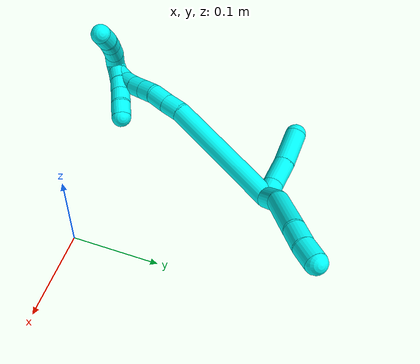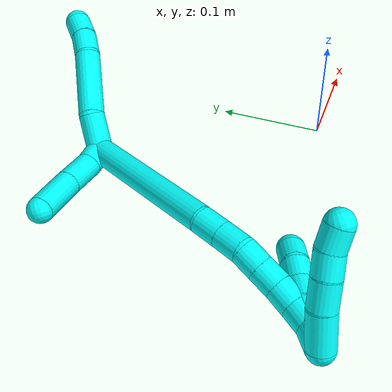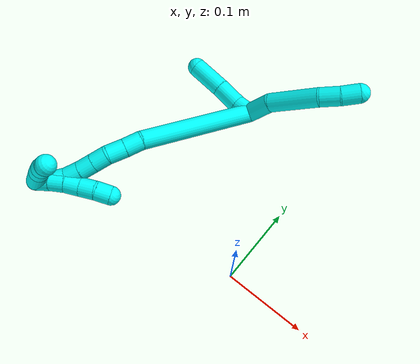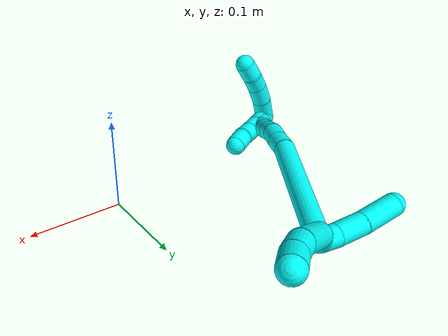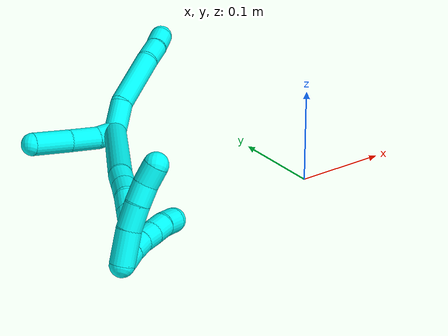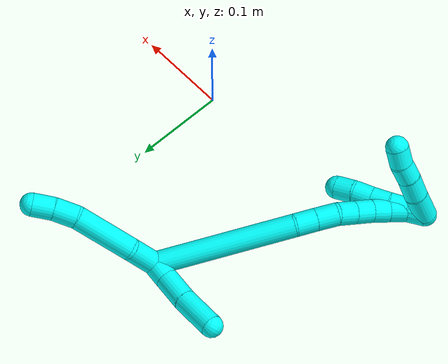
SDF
<sdf version="1.7">
 <world name="default">
  <model name="3">
   <static>0</static>
   <link name="3">
    <collision name="collision-cylinder-e_1_2_8">
     <pose>-0.000932 -0.00084 -0.017395 3.09332 -0.053478 -1.67303</pose>
     <geometry><cylinder><radius>0.0125</radius><length>0.03488</length></cylinder></geometry>
     <surface>
      <friction><ode><mu>1.16</mu><mu2>1.16</mu2><slip1>0</slip1><slip2>0</slip2></ode></friction>
      <contact><ode><kp>1e+06</kp><kd>1</kd><max_vel>0</max_vel><min_depth>0.001</min_depth></ode></contact>
     </surface>
    </collision>
    <visual name="visual-cylinder-e_1_2_8">
     <pose>-0.000932 -0.00084 -0.017395 3.09332 -0.053478 -1.67303</pose>
     <geometry><cylinder><radius>0.0125</radius><length>0.03488</length></cylinder></geometry>
     <material><ambient>0.003922 1 0.996078 1</ambient></material>
    </visual>
    <collision name="collision-cylinder-e_2_8_9">
     <pose>-0.009174 0.006251 -0.066096 -2.89346 -0.222573 1.46129</pose>
     <geometry><cylinder><radius>0.0125</radius><length>0.066225</length></cylinder></geometry>
     <surface>
      <friction><ode><mu>1.16</mu><mu2>1.16</mu2><slip1>0</slip1><slip2>0</slip2></ode></friction>
      <contact><ode><kp>1e+06</kp><kd>1</kd><max_vel>0</max_vel><min_depth>0.001</min_depth></ode></contact>
     </surface>
    </collision>
    <visual name="visual-cylinder-e_2_8_9">
     <pose>-0.009174 0.006251 -0.066096 -2.89346 -0.222573 1.46129</pose>
     <geometry><cylinder><radius>0.0125</radius><length>0.066225</length></cylinder></geometry>
     <material><ambient>0.003922 1 0.996078 1</ambient></material>
    </visual>
    <collision name="collision-cylinder-e_3_9_10">
     <pose>-0.018084 0.019896 -0.108615 -2.6703 -0.126584 0.516132</pose>
     <geometry><cylinder><radius>0.0125</radius><length>0.025371</length></cylinder></geometry>
     <surface>
      <friction><ode><mu>1.16</mu><mu2>1.16</mu2><slip1>0</slip1><slip2>0</slip2></ode></friction>
      <contact><ode><kp>1e+06</kp><kd>1</kd><max_vel>0</max_vel><min_depth>0.001</min_depth></ode></contact>
     </surface>
    </collision>
    <visual name="visual-cylinder-e_3_9_10">
     <pose>-0.018084 0.019896 -0.108615 -2.6703 -0.126584 0.516132</pose>
     <geometry><cylinder><radius>0.0125</radius><length>0.025371</length></cylinder></geometry>
     <material><ambient>0.003922 1 0.996078 1</ambient></material>
    </visual>
    <collision name="collision-cylinder-e_4_10_6">
     <pose>-0.019464 0.031529 -0.129989 -2.61415 0.018858 -0.069815</pose>
     <geometry><cylinder><radius>0.0125</radius><length>0.023524</length></cylinder></geometry>
     <surface>
      <friction><ode><mu>1.16</mu><mu2>1.16</mu2><slip1>0</slip1><slip2>0</slip2></ode></friction>
      <contact><ode><kp>1e+06</kp><kd>1</kd><max_vel>0</max_vel><min_depth>0.001</min_depth></ode></contact>
     </surface>
    </collision>
    <visual name="visual-cylinder-e_4_10_6">
     <pose>-0.019464 0.031529 -0.129989 -2.61415 0.018858 -0.069815</pose>
     <geometry><cylinder><radius>0.0125</radius><length>0.023524</length></cylinder></geometry>
     <material><ambient>0.003922 1 0.996078 1</ambient></material>
    </visual>
    <collision name="collision-cylinder-e_1_2_11">
     <pose>0.007551 -0.004794 0.006071 0.668456 0.773325 0.280914</pose>
     <geometry><cylinder><radius>0.0125</radius><length>0.02162</length></cylinder></geometry>
     <surface>
      <friction><ode><mu>1.16</mu><mu2>1.16</mu2><slip1>0</slip1><slip2>0</slip2></ode></friction>
      <contact><ode><kp>1e+06</kp><kd>1</kd><max_vel>0</max_vel><min_depth>0.001</min_depth></ode></contact>
     </surface>
    </collision>
    <visual name="visual-cylinder-e_1_2_11">
     <pose>0.007551 -0.004794 0.006071 0.668456 0.773325 0.280914</pose>
     <geometry><cylinder><radius>0.0125</radius><length>0.02162</length></cylinder></geometry>
     <material><ambient>0.003922 1 0.996078 1</ambient></material>
    </visual>
    <collision name="collision-cylinder-e_2_11_12">
     <pose>0.0273 -0.019208 0.018866 0.960745 0.804675 0.436434</pose>
     <geometry><cylinder><radius>0.0125</radius><length>0.033855</length></cylinder></geometry>
     <surface>
      <friction><ode><mu>1.16</mu><mu2>1.16</mu2><slip1>0</slip1><slip2>0</slip2></ode></friction>
      <contact><ode><kp>1e+06</kp><kd>1</kd><max_vel>0</max_vel><min_depth>0.001</min_depth></ode></contact>
     </surface>
    </collision>
    <visual name="visual-cylinder-e_2_11_12">
     <pose>0.0273 -0.019208 0.018866 0.960745 0.804675 0.436434</pose>
     <geometry><cylinder><radius>0.0125</radius><length>0.033855</length></cylinder></geometry>
     <material><ambient>0.003922 1 0.996078 1</ambient></material>
    </visual>
    <collision name="collision-cylinder-e_3_12_5">
     <pose>0.054118 -0.042962 0.034651 1.00068 0.716426 0.403786</pose>
     <geometry><cylinder><radius>0.0125</radius><length>0.044525</length></cylinder></geometry>
     <surface>
      <friction><ode><mu>1.16</mu><mu2>1.16</mu2><slip1>0</slip1><slip2>0</slip2></ode></friction>
      <contact><ode><kp>1e+06</kp><kd>1</kd><max_vel>0</max_vel><min_depth>0.001</min_depth></ode></contact>
     </surface>
    </collision>
    <visual name="visual-cylinder-e_3_12_5">
     <pose>0.054118 -0.042962 0.034651 1.00068 0.716426 0.403786</pose>
     <geometry><cylinder><radius>0.0125</radius><length>0.044525</length></cylinder></geometry>
     <material><ambient>0.003922 1 0.996078 1</ambient></material>
    </visual>
    <collision name="collision-cylinder-e_1_2_13">
     <pose>-0.028146 -0.053161 0.047213 0.844579 -0.376933 -0.170981</pose>
     <geometry><cylinder><radius>0.0125</radius><length>0.152936</length></cylinder></geometry>
     <surface>
      <friction><ode><mu>1.16</mu><mu2>1.16</mu2><slip1>0</slip1><slip2>0</slip2></ode></friction>
      <contact><ode><kp>1e+06</kp><kd>1</kd><max_vel>0</max_vel><min_depth>0.001</min_depth></ode></contact>
     </surface>
    </collision>
    <visual name="visual-cylinder-e_1_2_13">
     <pose>-0.028146 -0.053161 0.047213 0.844579 -0.376933 -0.170981</pose>
     <geometry><cylinder><radius>0.0125</radius><length>0.152936</length></cylinder></geometry>
     <material><ambient>0.003922 1 0.996078 1</ambient></material>
    </visual>
    <collision name="collision-cylinder-e_2_13_14">
     <pose>-0.06154 -0.112538 0.102758 0.641072 -0.467575 -0.157791</pose>
     <geometry><cylinder><radius>0.0125</radius><length>0.02329</length></cylinder></geometry>
     <surface>
      <friction><ode><mu>1.16</mu><mu2>1.16</mu2><slip1>0</slip1><slip2>0</slip2></ode></friction>
      <contact><ode><kp>1e+06</kp><kd>1</kd><max_vel>0</max_vel><min_depth>0.001</min_depth></ode></contact>
     </surface>
    </collision>
    <visual name="visual-cylinder-e_2_13_14">
     <pose>-0.06154 -0.112538 0.102758 0.641072 -0.467575 -0.157791</pose>
     <geometry><cylinder><radius>0.0125</radius><length>0.02329</length></cylinder></geometry>
     <material><ambient>0.003922 1 0.996078 1</ambient></material>
    </visual>
    <collision name="collision-cylinder-e_3_14_15">
     <pose>-0.071781 -0.125468 0.119413 0.67873 -0.436821 -0.156388</pose>
     <geometry><cylinder><radius>0.0125</radius><length>0.023604</length></cylinder></geometry>
     <surface>
      <friction><ode><mu>1.16</mu><mu2>1.16</mu2><slip1>0</slip1><slip2>0</slip2></ode></friction>
      <contact><ode><kp>1e+06</kp><kd>1</kd><max_vel>0</max_vel><min_depth>0.001</min_depth></ode></contact>
     </surface>
    </collision>
    <visual name="visual-cylinder-e_3_14_15">
     <pose>-0.071781 -0.125468 0.119413 0.67873 -0.436821 -0.156388</pose>
     <geometry><cylinder><radius>0.0125</radius><length>0.023604</length></cylinder></geometry>
     <material><ambient>0.003922 1 0.996078 1</ambient></material>
    </visual>
    <collision name="collision-cylinder-e_4_15_16">
     <pose>-0.080557 -0.135548 0.136433 0.369273 -0.385332 -0.072838</pose>
     <geometry><cylinder><radius>0.0125</radius><length>0.020127</length></cylinder></geometry>
     <surface>
      <friction><ode><mu>1.16</mu><mu2>1.16</mu2><slip1>0</slip1><slip2>0</slip2></ode></friction>
      <contact><ode><kp>1e+06</kp><kd>1</kd><max_vel>0</max_vel><min_depth>0.001</min_depth></ode></contact>
     </surface>
    </collision>
    <visual name="visual-cylinder-e_4_15_16">
     <pose>-0.080557 -0.135548 0.136433 0.369273 -0.385332 -0.072838</pose>
     <geometry><cylinder><radius>0.0125</radius><length>0.020127</length></cylinder></geometry>
     <material><ambient>0.003922 1 0.996078 1</ambient></material>
    </visual>
    <collision name="collision-cylinder-e_5_16_17">
     <pose>-0.088124 -0.142225 0.153783 0.365498 -0.387784 -0.072547</pose>
     <geometry><cylinder><radius>0.0125</radius><length>0.020016</length></cylinder></geometry>
     <surface>
      <friction><ode><mu>1.16</mu><mu2>1.16</mu2><slip1>0</slip1><slip2>0</slip2></ode></friction>
      <contact><ode><kp>1e+06</kp><kd>1</kd><max_vel>0</max_vel><min_depth>0.001</min_depth></ode></contact>
     </surface>
    </collision>
    <visual name="visual-cylinder-e_5_16_17">
     <pose>-0.088124 -0.142225 0.153783 0.365498 -0.387784 -0.072547</pose>
     <geometry><cylinder><radius>0.0125</radius><length>0.020016</length></cylinder></geometry>
     <material><ambient>0.003922 1 0.996078 1</ambient></material>
    </visual>
    <collision name="collision-cylinder-e_6_17_18">
     <pose>-0.094939 -0.149354 0.171174 0.41187 -0.307788 -0.064786</pose>
     <geometry><cylinder><radius>0.0125</radius><length>0.020012</length></cylinder></geometry>
     <surface>
      <friction><ode><mu>1.16</mu><mu2>1.16</mu2><slip1>0</slip1><slip2>0</slip2></ode></friction>
      <contact><ode><kp>1e+06</kp><kd>1</kd><max_vel>0</max_vel><min_depth>0.001</min_depth></ode></contact>
     </surface>
    </collision>
    <visual name="visual-cylinder-e_6_17_18">
     <pose>-0.094939 -0.149354 0.171174 0.41187 -0.307788 -0.064786</pose>
     <geometry><cylinder><radius>0.0125</radius><length>0.020012</length></cylinder></geometry>
     <material><ambient>0.003922 1 0.996078 1</ambient></material>
    </visual>
    <collision name="collision-cylinder-e_7_18_19">
     <pose>-0.100084 -0.158779 0.18792 0.610938 -0.212876 -0.067357</pose>
     <geometry><cylinder><radius>0.0125</radius><length>0.020002</length></cylinder></geometry>
     <surface>
      <friction><ode><mu>1.16</mu><mu2>1.16</mu2><slip1>0</slip1><slip2>0</slip2></ode></friction>
      <contact><ode><kp>1e+06</kp><kd>1</kd><max_vel>0</max_vel><min_depth>0.001</min_depth></ode></contact>
     </surface>
    </collision>
    <visual name="visual-cylinder-e_7_18_19">
     <pose>-0.100084 -0.158779 0.18792 0.610938 -0.212876 -0.067357</pose>
     <geometry><cylinder><radius>0.0125</radius><length>0.020002</length></cylinder></geometry>
     <material><ambient>0.003922 1 0.996078 1</ambient></material>
    </visual>
    <collision name="collision-cylinder-e_8_19_1">
     <pose>-0.101508 -0.170155 0.204074 0.616136 0.068873 0.021923</pose>
     <geometry><cylinder><radius>0.0125</radius><length>0.020013</length></cylinder></geometry>
     <surface>
      <friction><ode><mu>1.16</mu><mu2>1.16</mu2><slip1>0</slip1><slip2>0</slip2></ode></friction>
      <contact><ode><kp>1e+06</kp><kd>1</kd><max_vel>0</max_vel><min_depth>0.001</min_depth></ode></contact>
     </surface>
    </collision>
    <visual name="visual-cylinder-e_8_19_1">
     <pose>-0.101508 -0.170155 0.204074 0.616136 0.068873 0.021923</pose>
     <geometry><cylinder><radius>0.0125</radius><length>0.020013</length></cylinder></geometry>
     <material><ambient>0.003922 1 0.996078 1</ambient></material>
    </visual>
    <collision name="collision-cylinder-e_1_1_20">
     <pose>-0.102011 -0.170585 0.203851 -2.57383 -0.119411 0.404169</pose>
     <geometry><cylinder><radius>0.0125</radius><length>0.02</length></cylinder></geometry>
     <surface>
      <friction><ode><mu>1.16</mu><mu2>1.16</mu2><slip1>0</slip1><slip2>0</slip2></ode></friction>
      <contact><ode><kp>1e+06</kp><kd>1</kd><max_vel>0</max_vel><min_depth>0.001</min_depth></ode></contact>
     </surface>
    </collision>
    <visual name="visual-cylinder-e_1_1_20">
     <pose>-0.102011 -0.170585 0.203851 -2.57383 -0.119411 0.404169</pose>
     <geometry><cylinder><radius>0.0125</radius><length>0.02</length></cylinder></geometry>
     <material><ambient>0.003922 1 0.996078 1</ambient></material>
    </visual>
    <collision name="collision-cylinder-e_2_20_21">
     <pose>-0.104775 -0.159001 0.187829 -2.457 -0.157912 0.437001</pose>
     <geometry><cylinder><radius>0.0125</radius><length>0.02</length></cylinder></geometry>
     <surface>
      <friction><ode><mu>1.16</mu><mu2>1.16</mu2><slip1>0</slip1><slip2>0</slip2></ode></friction>
      <contact><ode><kp>1e+06</kp><kd>1</kd><max_vel>0</max_vel><min_depth>0.001</min_depth></ode></contact>
     </surface>
    </collision>
    <visual name="visual-cylinder-e_2_20_21">
     <pose>-0.104775 -0.159001 0.187829 -2.457 -0.157912 0.437001</pose>
     <geometry><cylinder><radius>0.0125</radius><length>0.02</length></cylinder></geometry>
     <material><ambient>0.003922 1 0.996078 1</ambient></material>
    </visual>
    <collision name="collision-cylinder-e_3_21_22">
     <pose>-0.108719 -0.145818 0.173379 -2.34609 -0.239455 0.557747</pose>
     <geometry><cylinder><radius>0.0125</radius><length>0.02</length></cylinder></geometry>
     <surface>
      <friction><ode><mu>1.16</mu><mu2>1.16</mu2><slip1>0</slip1><slip2>0</slip2></ode></friction>
      <contact><ode><kp>1e+06</kp><kd>1</kd><max_vel>0</max_vel><min_depth>0.001</min_depth></ode></contact>
     </surface>
    </collision>
    <visual name="visual-cylinder-e_3_21_22">
     <pose>-0.108719 -0.145818 0.173379 -2.34609 -0.239455 0.557747</pose>
     <geometry><cylinder><radius>0.0125</radius><length>0.02</length></cylinder></geometry>
     <material><ambient>0.003922 1 0.996078 1</ambient></material>
    </visual>
    <collision name="collision-cylinder-e_4_22_23">
     <pose>-0.113692 -0.132427 0.159396 -2.40979 -0.263142 0.665113</pose>
     <geometry><cylinder><radius>0.0125</radius><length>0.02</length></cylinder></geometry>
     <surface>
      <friction><ode><mu>1.16</mu><mu2>1.16</mu2><slip1>0</slip1><slip2>0</slip2></ode></friction>
      <contact><ode><kp>1e+06</kp><kd>1</kd><max_vel>0</max_vel><min_depth>0.001</min_depth></ode></contact>
     </surface>
    </collision>
    <visual name="visual-cylinder-e_4_22_23">
     <pose>-0.113692 -0.132427 0.159396 -2.40979 -0.263142 0.665113</pose>
     <geometry><cylinder><radius>0.0125</radius><length>0.02</length></cylinder></geometry>
     <material><ambient>0.003922 1 0.996078 1</ambient></material>
    </visual>
    <collision name="collision-cylinder-e_5_23_4">
     <pose>-0.118719 -0.118139 0.146493 -2.20127 -0.245099 0.475579</pose>
     <geometry><cylinder><radius>0.0125</radius><length>0.02</length></cylinder></geometry>
     <surface>
      <friction><ode><mu>1.16</mu><mu2>1.16</mu2><slip1>0</slip1><slip2>0</slip2></ode></friction>
      <contact><ode><kp>1e+06</kp><kd>1</kd><max_vel>0</max_vel><min_depth>0.001</min_depth></ode></contact>
     </surface>
    </collision>
    <visual name="visual-cylinder-e_5_23_4">
     <pose>-0.118719 -0.118139 0.146493 -2.20127 -0.245099 0.475579</pose>
     <geometry><cylinder><radius>0.0125</radius><length>0.02</length></cylinder></geometry>
     <material><ambient>0.003922 1 0.996078 1</ambient></material>
    </visual>
    <collision name="collision-cylinder-e_1_1_24">
     <pose>-0.103792 -0.183479 0.197208 2.67543 -0.175043 -0.708087</pose>
     <geometry><cylinder><radius>0.0125</radius><length>0.034136</length></cylinder></geometry>
     <surface>
      <friction><ode><mu>1.16</mu><mu2>1.16</mu2><slip1>0</slip1><slip2>0</slip2></ode></friction>
      <contact><ode><kp>1e+06</kp><kd>1</kd><max_vel>0</max_vel><min_depth>0.001</min_depth></ode></contact>
     </surface>
    </collision>
    <visual name="visual-cylinder-e_1_1_24">
     <pose>-0.103792 -0.183479 0.197208 2.67543 -0.175043 -0.708087</pose>
     <geometry><cylinder><radius>0.0125</radius><length>0.034136</length></cylinder></geometry>
     <material><ambient>0.003922 1 0.996078 1</ambient></material>
    </visual>
    <collision name="collision-cylinder-e_2_24_25">
     <pose>-0.110527 -0.196156 0.171375 2.69935 -0.30459 -1.19814</pose>
     <geometry><cylinder><radius>0.0125</radius><length>0.025096</length></cylinder></geometry>
     <surface>
      <friction><ode><mu>1.16</mu><mu2>1.16</mu2><slip1>0</slip1><slip2>0</slip2></ode></friction>
      <contact><ode><kp>1e+06</kp><kd>1</kd><max_vel>0</max_vel><min_depth>0.001</min_depth></ode></contact>
     </surface>
    </collision>
    <visual name="visual-cylinder-e_2_24_25">
     <pose>-0.110527 -0.196156 0.171375 2.69935 -0.30459 -1.19814</pose>
     <geometry><cylinder><radius>0.0125</radius><length>0.025096</length></cylinder></geometry>
     <material><ambient>0.003922 1 0.996078 1</ambient></material>
    </visual>
    <collision name="collision-cylinder-e_3_25_26">
     <pose>-0.117664 -0.204396 0.151483 2.81068 -0.338142 -1.59282</pose>
     <geometry><cylinder><radius>0.0125</radius><length>0.020339</length></cylinder></geometry>
     <surface>
      <friction><ode><mu>1.16</mu><mu2>1.16</mu2><slip1>0</slip1><slip2>0</slip2></ode></friction>
      <contact><ode><kp>1e+06</kp><kd>1</kd><max_vel>0</max_vel><min_depth>0.001</min_depth></ode></contact>
     </surface>
    </collision>
    <visual name="visual-cylinder-e_3_25_26">
     <pose>-0.117664 -0.204396 0.151483 2.81068 -0.338142 -1.59282</pose>
     <geometry><cylinder><radius>0.0125</radius><length>0.020339</length></cylinder></geometry>
     <material><ambient>0.003922 1 0.996078 1</ambient></material>
    </visual>
    <collision name="collision-cylinder-e_4_26_3">
     <pose>-0.125881 -0.21173 0.134467 2.65351 -0.494034 -1.58341</pose>
     <geometry><cylinder><radius>0.0125</radius><length>0.020429</length></cylinder></geometry>
     <surface>
      <friction><ode><mu>1.16</mu><mu2>1.16</mu2><slip1>0</slip1><slip2>0</slip2></ode></friction>
      <contact><ode><kp>1e+06</kp><kd>1</kd><max_vel>0</max_vel><min_depth>0.001</min_depth></ode></contact>
     </surface>
    </collision>
    <visual name="visual-cylinder-e_4_26_3">
     <pose>-0.125881 -0.21173 0.134467 2.65351 -0.494034 -1.58341</pose>
     <geometry><cylinder><radius>0.0125</radius><length>0.020429</length></cylinder></geometry>
     <material><ambient>0.003922 1 0.996078 1</ambient></material>
    </visual>
    <collision name="collision-sphere-3">
     <pose>-0.130725 -0.215947 0.126524 0 -0 0</pose>
     <geometry><sphere><radius>0.0125</radius></sphere></geometry>
     <surface>
      <friction><ode><mu>1.16</mu><mu2>1.16</mu2><slip1>0</slip1><slip2>0</slip2></ode></friction>
      <contact><ode><kp>1e+06</kp><kd>1</kd><max_vel>0</max_vel><min_depth>0.001</min_depth></ode></contact>
     </surface>
    </collision>
    <visual name="visual-sphere-3">
     <pose>-0.130725 -0.215947 0.126524 0 -0 0</pose>
     <geometry><sphere><radius>0.0125</radius></sphere></geometry>
     <material><ambient>0.003922 1 0.996078 1</ambient></material>
    </visual>
    <collision name="collision-sphere-26">
     <pose>-0.121038 -0.207513 0.14241 0 -0 0</pose>
     <geometry><sphere><radius>0.0125</radius></sphere></geometry>
     <surface>
      <friction><ode><mu>1.16</mu><mu2>1.16</mu2><slip1>0</slip1><slip2>0</slip2></ode></friction>
      <contact><ode><kp>1e+06</kp><kd>1</kd><max_vel>0</max_vel><min_depth>0.001</min_depth></ode></contact>
     </surface>
    </collision>
    <visual name="visual-sphere-26">
     <pose>-0.121038 -0.207513 0.14241 0 -0 0</pose>
     <geometry><sphere><radius>0.0125</radius></sphere></geometry>
     <material><ambient>0.003922 1 0.996078 1</ambient></material>
    </visual>
    <collision name="collision-sphere-25">
     <pose>-0.114291 -0.201279 0.160556 0 -0 0</pose>
     <geometry><sphere><radius>0.0125</radius></sphere></geometry>
     <surface>
      <friction><ode><mu>1.16</mu><mu2>1.16</mu2><slip1>0</slip1><slip2>0</slip2></ode></friction>
      <contact><ode><kp>1e+06</kp><kd>1</kd><max_vel>0</max_vel><min_depth>0.001</min_depth></ode></contact>
     </surface>
    </collision>
    <visual name="visual-sphere-25">
     <pose>-0.114291 -0.201279 0.160556 0 -0 0</pose>
     <geometry><sphere><radius>0.0125</radius></sphere></geometry>
     <material><ambient>0.003922 1 0.996078 1</ambient></material>
    </visual>
    <collision name="collision-sphere-24">
     <pose>-0.106764 -0.191033 0.182194 0 -0 0</pose>
     <geometry><sphere><radius>0.0125</radius></sphere></geometry>
     <surface>
      <friction><ode><mu>1.16</mu><mu2>1.16</mu2><slip1>0</slip1><slip2>0</slip2></ode></friction>
      <contact><ode><kp>1e+06</kp><kd>1</kd><max_vel>0</max_vel><min_depth>0.001</min_depth></ode></contact>
     </surface>
    </collision>
    <visual name="visual-sphere-24">
     <pose>-0.106764 -0.191033 0.182194 0 -0 0</pose>
     <geometry><sphere><radius>0.0125</radius></sphere></geometry>
     <material><ambient>0.003922 1 0.996078 1</ambient></material>
    </visual>
    <collision name="collision-sphere-4">
     <pose>-0.121146 -0.110303 0.140774 0 -0 0</pose>
     <geometry><sphere><radius>0.0125</radius></sphere></geometry>
     <surface>
      <friction><ode><mu>1.16</mu><mu2>1.16</mu2><slip1>0</slip1><slip2>0</slip2></ode></friction>
      <contact><ode><kp>1e+06</kp><kd>1</kd><max_vel>0</max_vel><min_depth>0.001</min_depth></ode></contact>
     </surface>
    </collision>
    <visual name="visual-sphere-4">
     <pose>-0.121146 -0.110303 0.140774 0 -0 0</pose>
     <geometry><sphere><radius>0.0125</radius></sphere></geometry>
     <material><ambient>0.003922 1 0.996078 1</ambient></material>
    </visual>
    <collision name="collision-sphere-23">
     <pose>-0.116293 -0.125975 0.152213 0 -0 0</pose>
     <geometry><sphere><radius>0.0125</radius></sphere></geometry>
     <surface>
      <friction><ode><mu>1.16</mu><mu2>1.16</mu2><slip1>0</slip1><slip2>0</slip2></ode></friction>
      <contact><ode><kp>1e+06</kp><kd>1</kd><max_vel>0</max_vel><min_depth>0.001</min_depth></ode></contact>
     </surface>
    </collision>
    <visual name="visual-sphere-23">
     <pose>-0.116293 -0.125975 0.152213 0 -0 0</pose>
     <geometry><sphere><radius>0.0125</radius></sphere></geometry>
     <material><ambient>0.003922 1 0.996078 1</ambient></material>
    </visual>
    <collision name="collision-sphere-22">
     <pose>-0.111091 -0.138879 0.16658 0 -0 0</pose>
     <geometry><sphere><radius>0.0125</radius></sphere></geometry>
     <surface>
      <friction><ode><mu>1.16</mu><mu2>1.16</mu2><slip1>0</slip1><slip2>0</slip2></ode></friction>
      <contact><ode><kp>1e+06</kp><kd>1</kd><max_vel>0</max_vel><min_depth>0.001</min_depth></ode></contact>
     </surface>
    </collision>
    <visual name="visual-sphere-22">
     <pose>-0.111091 -0.138879 0.16658 0 -0 0</pose>
     <geometry><sphere><radius>0.0125</radius></sphere></geometry>
     <material><ambient>0.003922 1 0.996078 1</ambient></material>
    </visual>
    <collision name="collision-sphere-21">
     <pose>-0.106347 -0.152756 0.180179 0 -0 0</pose>
     <geometry><sphere><radius>0.0125</radius></sphere></geometry>
     <surface>
      <friction><ode><mu>1.16</mu><mu2>1.16</mu2><slip1>0</slip1><slip2>0</slip2></ode></friction>
      <contact><ode><kp>1e+06</kp><kd>1</kd><max_vel>0</max_vel><min_depth>0.001</min_depth></ode></contact>
     </surface>
    </collision>
    <visual name="visual-sphere-21">
     <pose>-0.106347 -0.152756 0.180179 0 -0 0</pose>
     <geometry><sphere><radius>0.0125</radius></sphere></geometry>
     <material><ambient>0.003922 1 0.996078 1</ambient></material>
    </visual>
    <collision name="collision-sphere-20">
     <pose>-0.103202 -0.165246 0.19548 0 -0 0</pose>
     <geometry><sphere><radius>0.0125</radius></sphere></geometry>
     <surface>
      <friction><ode><mu>1.16</mu><mu2>1.16</mu2><slip1>0</slip1><slip2>0</slip2></ode></friction>
      <contact><ode><kp>1e+06</kp><kd>1</kd><max_vel>0</max_vel><min_depth>0.001</min_depth></ode></contact>
     </surface>
    </collision>
    <visual name="visual-sphere-20">
     <pose>-0.103202 -0.165246 0.19548 0 -0 0</pose>
     <geometry><sphere><radius>0.0125</radius></sphere></geometry>
     <material><ambient>0.003922 1 0.996078 1</ambient></material>
    </visual>
    <collision name="collision-sphere-11">
     <pose>0.015102 -0.009589 0.012142 0 -0 0</pose>
     <geometry><sphere><radius>0.0125</radius></sphere></geometry>
     <surface>
      <friction><ode><mu>1.16</mu><mu2>1.16</mu2><slip1>0</slip1><slip2>0</slip2></ode></friction>
      <contact><ode><kp>1e+06</kp><kd>1</kd><max_vel>0</max_vel><min_depth>0.001</min_depth></ode></contact>
     </surface>
    </collision>
    <visual name="visual-sphere-11">
     <pose>0.015102 -0.009589 0.012142 0 -0 0</pose>
     <geometry><sphere><radius>0.0125</radius></sphere></geometry>
     <material><ambient>0.003922 1 0.996078 1</ambient></material>
    </visual>
    <collision name="collision-sphere-6">
     <pose>-0.019242 0.037448 -0.14015 0 -0 0</pose>
     <geometry><sphere><radius>0.0125</radius></sphere></geometry>
     <surface>
      <friction><ode><mu>1.16</mu><mu2>1.16</mu2><slip1>0</slip1><slip2>0</slip2></ode></friction>
      <contact><ode><kp>1e+06</kp><kd>1</kd><max_vel>0</max_vel><min_depth>0.001</min_depth></ode></contact>
     </surface>
    </collision>
    <visual name="visual-sphere-6">
     <pose>-0.019242 0.037448 -0.14015 0 -0 0</pose>
     <geometry><sphere><radius>0.0125</radius></sphere></geometry>
     <material><ambient>0.003922 1 0.996078 1</ambient></material>
    </visual>
    <collision name="collision-sphere-10">
     <pose>-0.019686 0.02561 -0.119827 0 -0 0</pose>
     <geometry><sphere><radius>0.0125</radius></sphere></geometry>
     <surface>
      <friction><ode><mu>1.16</mu><mu2>1.16</mu2><slip1>0</slip1><slip2>0</slip2></ode></friction>
      <contact><ode><kp>1e+06</kp><kd>1</kd><max_vel>0</max_vel><min_depth>0.001</min_depth></ode></contact>
     </surface>
    </collision>
    <visual name="visual-sphere-10">
     <pose>-0.019686 0.02561 -0.119827 0 -0 0</pose>
     <geometry><sphere><radius>0.0125</radius></sphere></geometry>
     <material><ambient>0.003922 1 0.996078 1</ambient></material>
    </visual>
    <collision name="collision-sphere-9">
     <pose>-0.016483 0.014183 -0.097402 0 -0 0</pose>
     <geometry><sphere><radius>0.0125</radius></sphere></geometry>
     <surface>
      <friction><ode><mu>1.16</mu><mu2>1.16</mu2><slip1>0</slip1><slip2>0</slip2></ode></friction>
      <contact><ode><kp>1e+06</kp><kd>1</kd><max_vel>0</max_vel><min_depth>0.001</min_depth></ode></contact>
     </surface>
    </collision>
    <visual name="visual-sphere-9">
     <pose>-0.016483 0.014183 -0.097402 0 -0 0</pose>
     <geometry><sphere><radius>0.0125</radius></sphere></geometry>
     <material><ambient>0.003922 1 0.996078 1</ambient></material>
    </visual>
    <collision name="collision-sphere-2">
     <geometry><sphere><radius>0.0125</radius></sphere></geometry>
     <surface>
      <friction><ode><mu>1.16</mu><mu2>1.16</mu2><slip1>0</slip1><slip2>0</slip2></ode></friction>
      <contact><ode><kp>1e+06</kp><kd>1</kd><max_vel>0</max_vel><min_depth>0.001</min_depth></ode></contact>
     </surface>
    </collision>
    <visual name="visual-sphere-2">
     <geometry><sphere><radius>0.0125</radius></sphere></geometry>
     <material><ambient>0.003922 1 0.996078 1</ambient></material>
    </visual>
    <collision name="collision-sphere-19">
     <pose>-0.102197 -0.164386 0.195927 0 -0 0</pose>
     <geometry><sphere><radius>0.0125</radius></sphere></geometry>
     <surface>
      <friction><ode><mu>1.16</mu><mu2>1.16</mu2><slip1>0</slip1><slip2>0</slip2></ode></friction>
      <contact><ode><kp>1e+06</kp><kd>1</kd><max_vel>0</max_vel><min_depth>0.001</min_depth></ode></contact>
     </surface>
    </collision>
    <visual name="visual-sphere-19">
     <pose>-0.102197 -0.164386 0.195927 0 -0 0</pose>
     <geometry><sphere><radius>0.0125</radius></sphere></geometry>
     <material><ambient>0.003922 1 0.996078 1</ambient></material>
    </visual>
    <collision name="collision-sphere-8">
     <pose>-0.001864 -0.001681 -0.034789 0 -0 0</pose>
     <geometry><sphere><radius>0.0125</radius></sphere></geometry>
     <surface>
      <friction><ode><mu>1.16</mu><mu2>1.16</mu2><slip1>0</slip1><slip2>0</slip2></ode></friction>
      <contact><ode><kp>1e+06</kp><kd>1</kd><max_vel>0</max_vel><min_depth>0.001</min_depth></ode></contact>
     </surface>
    </collision>
    <visual name="visual-sphere-8">
     <pose>-0.001864 -0.001681 -0.034789 0 -0 0</pose>
     <geometry><sphere><radius>0.0125</radius></sphere></geometry>
     <material><ambient>0.003922 1 0.996078 1</ambient></material>
    </visual>
    <collision name="collision-sphere-12">
     <pose>0.039498 -0.028828 0.02559 0 -0 0</pose>
     <geometry><sphere><radius>0.0125</radius></sphere></geometry>
     <surface>
      <friction><ode><mu>1.16</mu><mu2>1.16</mu2><slip1>0</slip1><slip2>0</slip2></ode></friction>
      <contact><ode><kp>1e+06</kp><kd>1</kd><max_vel>0</max_vel><min_depth>0.001</min_depth></ode></contact>
     </surface>
    </collision>
    <visual name="visual-sphere-12">
     <pose>0.039498 -0.028828 0.02559 0 -0 0</pose>
     <geometry><sphere><radius>0.0125</radius></sphere></geometry>
     <material><ambient>0.003922 1 0.996078 1</ambient></material>
    </visual>
    <collision name="collision-sphere-5">
     <pose>0.068737 -0.057096 0.043713 0 -0 0</pose>
     <geometry><sphere><radius>0.0125</radius></sphere></geometry>
     <surface>
      <friction><ode><mu>1.16</mu><mu2>1.16</mu2><slip1>0</slip1><slip2>0</slip2></ode></friction>
      <contact><ode><kp>1e+06</kp><kd>1</kd><max_vel>0</max_vel><min_depth>0.001</min_depth></ode></contact>
     </surface>
    </collision>
    <visual name="visual-sphere-5">
     <pose>0.068737 -0.057096 0.043713 0 -0 0</pose>
     <geometry><sphere><radius>0.0125</radius></sphere></geometry>
     <material><ambient>0.003922 1 0.996078 1</ambient></material>
    </visual>
    <collision name="collision-sphere-13">
     <pose>-0.056291 -0.106321 0.094427 0 -0 0</pose>
     <geometry><sphere><radius>0.0125</radius></sphere></geometry>
     <surface>
      <friction><ode><mu>1.16</mu><mu2>1.16</mu2><slip1>0</slip1><slip2>0</slip2></ode></friction>
      <contact><ode><kp>1e+06</kp><kd>1</kd><max_vel>0</max_vel><min_depth>0.001</min_depth></ode></contact>
     </surface>
    </collision>
    <visual name="visual-sphere-13">
     <pose>-0.056291 -0.106321 0.094427 0 -0 0</pose>
     <geometry><sphere><radius>0.0125</radius></sphere></geometry>
     <material><ambient>0.003922 1 0.996078 1</ambient></material>
    </visual>
    <collision name="collision-sphere-14">
     <pose>-0.066788 -0.118755 0.111089 0 -0 0</pose>
     <geometry><sphere><radius>0.0125</radius></sphere></geometry>
     <surface>
      <friction><ode><mu>1.16</mu><mu2>1.16</mu2><slip1>0</slip1><slip2>0</slip2></ode></friction>
      <contact><ode><kp>1e+06</kp><kd>1</kd><max_vel>0</max_vel><min_depth>0.001</min_depth></ode></contact>
     </surface>
    </collision>
    <visual name="visual-sphere-14">
     <pose>-0.066788 -0.118755 0.111089 0 -0 0</pose>
     <geometry><sphere><radius>0.0125</radius></sphere></geometry>
     <material><ambient>0.003922 1 0.996078 1</ambient></material>
    </visual>
    <collision name="collision-sphere-15">
     <pose>-0.076774 -0.132182 0.127736 0 -0 0</pose>
     <geometry><sphere><radius>0.0125</radius></sphere></geometry>
     <surface>
      <friction><ode><mu>1.16</mu><mu2>1.16</mu2><slip1>0</slip1><slip2>0</slip2></ode></friction>
      <contact><ode><kp>1e+06</kp><kd>1</kd><max_vel>0</max_vel><min_depth>0.001</min_depth></ode></contact>
     </surface>
    </collision>
    <visual name="visual-sphere-15">
     <pose>-0.076774 -0.132182 0.127736 0 -0 0</pose>
     <geometry><sphere><radius>0.0125</radius></sphere></geometry>
     <material><ambient>0.003922 1 0.996078 1</ambient></material>
    </visual>
    <collision name="collision-sphere-16">
     <pose>-0.084339 -0.138914 0.14513 0 -0 0</pose>
     <geometry><sphere><radius>0.0125</radius></sphere></geometry>
     <surface>
      <friction><ode><mu>1.16</mu><mu2>1.16</mu2><slip1>0</slip1><slip2>0</slip2></ode></friction>
      <contact><ode><kp>1e+06</kp><kd>1</kd><max_vel>0</max_vel><min_depth>0.001</min_depth></ode></contact>
     </surface>
    </collision>
    <visual name="visual-sphere-16">
     <pose>-0.084339 -0.138914 0.14513 0 -0 0</pose>
     <geometry><sphere><radius>0.0125</radius></sphere></geometry>
     <material><ambient>0.003922 1 0.996078 1</ambient></material>
    </visual>
    <collision name="collision-sphere-17">
     <pose>-0.091908 -0.145536 0.162436 0 -0 0</pose>
     <geometry><sphere><radius>0.0125</radius></sphere></geometry>
     <surface>
      <friction><ode><mu>1.16</mu><mu2>1.16</mu2><slip1>0</slip1><slip2>0</slip2></ode></friction>
      <contact><ode><kp>1e+06</kp><kd>1</kd><max_vel>0</max_vel><min_depth>0.001</min_depth></ode></contact>
     </surface>
    </collision>
    <visual name="visual-sphere-17">
     <pose>-0.091908 -0.145536 0.162436 0 -0 0</pose>
     <geometry><sphere><radius>0.0125</radius></sphere></geometry>
     <material><ambient>0.003922 1 0.996078 1</ambient></material>
    </visual>
    <collision name="collision-sphere-18">
     <pose>-0.097971 -0.153171 0.179913 0 -0 0</pose>
     <geometry><sphere><radius>0.0125</radius></sphere></geometry>
     <surface>
      <friction><ode><mu>1.16</mu><mu2>1.16</mu2><slip1>0</slip1><slip2>0</slip2></ode></friction>
      <contact><ode><kp>1e+06</kp><kd>1</kd><max_vel>0</max_vel><min_depth>0.001</min_depth></ode></contact>
     </surface>
    </collision>
    <visual name="visual-sphere-18">
     <pose>-0.097971 -0.153171 0.179913 0 -0 0</pose>
     <geometry><sphere><radius>0.0125</radius></sphere></geometry>
     <material><ambient>0.003922 1 0.996078 1</ambient></material>
    </visual>
    <collision name="collision-sphere-1">
     <pose>-0.100819 -0.175924 0.212222 0 -0 0</pose>
     <geometry><sphere><radius>0.0125</radius></sphere></geometry>
     <surface>
      <friction><ode><mu>1.16</mu><mu2>1.16</mu2><slip1>0</slip1><slip2>0</slip2></ode></friction>
      <contact><ode><kp>1e+06</kp><kd>1</kd><max_vel>0</max_vel><min_depth>0.001</min_depth></ode></contact>
     </surface>
    </collision>
    <visual name="visual-sphere-1">
     <pose>-0.100819 -0.175924 0.212222 0 -0 0</pose>
     <geometry><sphere><radius>0.0125</radius></sphere></geometry>
     <material><ambient>0.003922 1 0.996078 1</ambient></material>
    </visual>
    <inertial>
     <pose>-0.0494 -0.085442 0.07376 0 -0 0</pose>
     <mass>0.75</mass>
     <inertia>
      <ixx>0.000281</ixx>
      <ixy>0</ixy>
      <ixz>0</ixz>
      <iyy>0.000183</iyy>
      <iyz>0</iyz>
      <izz>0.000329</izz>
     </inertia>
    </inertial>
   </link>
   <pose>-0.117237 0.190166 0.014279 -2.30221 0.081452 2.25683</pose>
  </model>
 </world>
</sdf>
